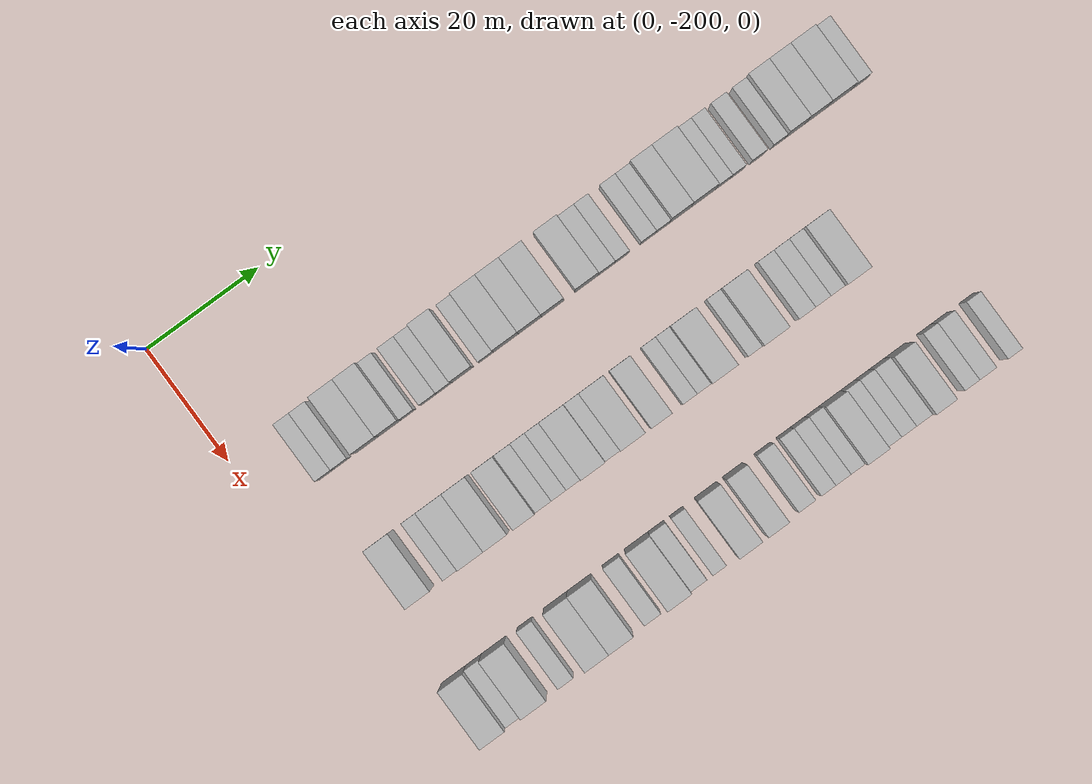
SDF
<sdf version="1.6">
 <world name="default">
  <model name="building_45">
   <static>1</static>
   <pose>25.0000 -189.5589 0 0.000000 0.000000 0.000000</pose>
   <link name="link">
    <pose>0 0 3.00 0 0 0</pose>
    <collision name="collision"><geometry><box><size>10.0000 2.7547 6.0000</size></box></geometry></collision>
    <visual name="visual">
     <cast_shadows>0</cast_shadows>
     <geometry><box><size>10.0000 2.7547 6.0000</size></box></geometry>
     <material>
      <script>
       <uri>model://HANNAS_wall/materials/scripts</uri>
       <uri>model://HANNAS_wall/materials/textures</uri>
       <name>vrc/HANNAS_wall</name>
      </script>
     </material>
    </visual>
   </link>
  </model>
  <model name="building_46">
   <static>1</static>
   <pose>25.0000 -186.7561 0 0.000000 0.000000 0.000000</pose>
   <link name="link">
    <pose>0 0 3.00 0 0 0</pose>
    <collision name="collision"><geometry><box><size>10.0000 2.8510 6.0000</size></box></geometry></collision>
    <visual name="visual">
     <cast_shadows>0</cast_shadows>
     <geometry><box><size>10.0000 2.8510 6.0000</size></box></geometry>
     <material>
      <script>
       <uri>model://HANNAS_wall/materials/scripts</uri>
       <uri>model://HANNAS_wall/materials/textures</uri>
       <name>vrc/HANNAS_wall</name>
      </script>
     </material>
    </visual>
   </link>
  </model>
  <model name="building_47">
   <static>1</static>
   <pose>25.0000 -182.2093 0 0.000000 0.000000 0.000000</pose>
   <link name="link">
    <pose>0 0 4.50 0 0 0</pose>
    <collision name="collision"><geometry><box><size>10.0000 4.2424 9.0000</size></box></geometry></collision>
    <visual name="visual">
     <cast_shadows>0</cast_shadows>
     <geometry><box><size>10.0000 4.2424 9.0000</size></box></geometry>
     <material>
      <script>
       <uri>model://HANNAS_wall/materials/scripts</uri>
       <uri>model://HANNAS_wall/materials/textures</uri>
       <name>vrc/HANNAS_wall</name>
      </script>
     </material>
    </visual>
   </link>
  </model>
  <model name="building_48">
   <static>1</static>
   <pose>25.0000 -178.1361 0 0.000000 0.000000 0.000000</pose>
   <link name="link">
    <pose>0 0 4.50 0 0 0</pose>
    <collision name="collision"><geometry><box><size>10.0000 3.9040 9.0000</size></box></geometry></collision>
    <visual name="visual">
     <cast_shadows>0</cast_shadows>
     <geometry><box><size>10.0000 3.9040 9.0000</size></box></geometry>
     <material>
      <script>
       <uri>model://HANNAS_wall/materials/scripts</uri>
       <uri>model://HANNAS_wall/materials/textures</uri>
       <name>vrc/HANNAS_wall</name>
      </script>
     </material>
    </visual>
   </link>
  </model>
  <model name="building_49">
   <static>1</static>
   <pose>25.0000 -174.9374 0 0.000000 0.000000 0.000000</pose>
   <link name="link">
    <pose>0 0 3.00 0 0 0</pose>
    <collision name="collision"><geometry><box><size>10.0000 2.4933 6.0000</size></box></geometry></collision>
    <visual name="visual">
     <cast_shadows>0</cast_shadows>
     <geometry><box><size>10.0000 2.4933 6.0000</size></box></geometry>
     <material>
      <script>
       <uri>model://HANNAS_wall/materials/scripts</uri>
       <uri>model://HANNAS_wall/materials/textures</uri>
       <name>vrc/HANNAS_wall</name>
      </script>
     </material>
    </visual>
   </link>
  </model>
  <model name="building_50">
   <static>1</static>
   <pose>25.0000 -171.2489 0 0.000000 0.000000 0.000000</pose>
   <link name="link">
    <pose>0 0 3.00 0 0 0</pose>
    <collision name="collision"><geometry><box><size>10.0000 2.8836 6.0000</size></box></geometry></collision>
    <visual name="visual">
     <cast_shadows>0</cast_shadows>
     <geometry><box><size>10.0000 2.8836 6.0000</size></box></geometry>
     <material>
      <script>
       <uri>model://HANNAS_wall/materials/scripts</uri>
       <uri>model://HANNAS_wall/materials/textures</uri>
       <name>vrc/HANNAS_wall</name>
      </script>
     </material>
    </visual>
   </link>
  </model>
  <model name="building_51">
   <static>1</static>
   <pose>25.0000 -168.4808 0 0.000000 0.000000 0.000000</pose>
   <link name="link">
    <pose>0 0 3.00 0 0 0</pose>
    <collision name="collision"><geometry><box><size>10.0000 2.6526 6.0000</size></box></geometry></collision>
    <visual name="visual">
     <cast_shadows>0</cast_shadows>
     <geometry><box><size>10.0000 2.6526 6.0000</size></box></geometry>
     <material>
      <script>
       <uri>model://HANNAS_wall/materials/scripts</uri>
       <uri>model://HANNAS_wall/materials/textures</uri>
       <name>vrc/HANNAS_wall</name>
      </script>
     </material>
    </visual>
   </link>
  </model>
  <model name="building_52">
   <static>1</static>
   <pose>25.0000 -165.2597 0 0.000000 0.000000 0.000000</pose>
   <link name="link">
    <pose>0 0 4.50 0 0 0</pose>
    <collision name="collision"><geometry><box><size>10.0000 3.7896 9.0000</size></box></geometry></collision>
    <visual name="visual">
     <cast_shadows>0</cast_shadows>
     <geometry><box><size>10.0000 3.7896 9.0000</size></box></geometry>
     <material>
      <script>
       <uri>model://HANNAS_wall/materials/scripts</uri>
       <uri>model://HANNAS_wall/materials/textures</uri>
       <name>vrc/HANNAS_wall</name>
      </script>
     </material>
    </visual>
   </link>
  </model>
  <model name="building_53">
   <static>1</static>
   <pose>25.0000 -161.0583 0 0.000000 0.000000 0.000000</pose>
   <link name="link">
    <pose>0 0 3.00 0 0 0</pose>
    <collision name="collision"><geometry><box><size>10.0000 2.6131 6.0000</size></box></geometry></collision>
    <visual name="visual">
     <cast_shadows>0</cast_shadows>
     <geometry><box><size>10.0000 2.6131 6.0000</size></box></geometry>
     <material>
      <script>
       <uri>model://HANNAS_wall/materials/scripts</uri>
       <uri>model://HANNAS_wall/materials/textures</uri>
       <name>vrc/HANNAS_wall</name>
      </script>
     </material>
    </visual>
   </link>
  </model>
  <model name="building_54">
   <static>1</static>
   <pose>25.0000 -157.5441 0 0.000000 0.000000 0.000000</pose>
   <link name="link">
    <pose>0 0 4.50 0 0 0</pose>
    <collision name="collision"><geometry><box><size>10.0000 4.4152 9.0000</size></box></geometry></collision>
    <visual name="visual">
     <cast_shadows>0</cast_shadows>
     <geometry><box><size>10.0000 4.4152 9.0000</size></box></geometry>
     <material>
      <script>
       <uri>model://HANNAS_wall/materials/scripts</uri>
       <uri>model://HANNAS_wall/materials/textures</uri>
       <name>vrc/HANNAS_wall</name>
      </script>
     </material>
    </visual>
   </link>
  </model>
  <model name="building_55">
   <static>1</static>
   <pose>25.0000 -153.2871 0 0.000000 0.000000 0.000000</pose>
   <link name="link">
    <pose>0 0 4.50 0 0 0</pose>
    <collision name="collision"><geometry><box><size>10.0000 4.0987 9.0000</size></box></geometry></collision>
    <visual name="visual">
     <cast_shadows>0</cast_shadows>
     <geometry><box><size>10.0000 4.0987 9.0000</size></box></geometry>
     <material>
      <script>
       <uri>model://HANNAS_wall/materials/scripts</uri>
       <uri>model://HANNAS_wall/materials/textures</uri>
       <name>vrc/HANNAS_wall</name>
      </script>
     </material>
    </visual>
   </link>
  </model>
  <model name="building_56">
   <static>1</static>
   <pose>25.0000 -149.2457 0 0.000000 0.000000 0.000000</pose>
   <link name="link">
    <pose>0 0 4.50 0 0 0</pose>
    <collision name="collision"><geometry><box><size>10.0000 3.9842 9.0000</size></box></geometry></collision>
    <visual name="visual">
     <cast_shadows>0</cast_shadows>
     <geometry><box><size>10.0000 3.9842 9.0000</size></box></geometry>
     <material>
      <script>
       <uri>model://HANNAS_wall/materials/scripts</uri>
       <uri>model://HANNAS_wall/materials/textures</uri>
       <name>vrc/HANNAS_wall</name>
      </script>
     </material>
    </visual>
   </link>
  </model>
  <model name="building_57">
   <static>1</static>
   <pose>25.0000 -143.2007 0 0.000000 0.000000 0.000000</pose>
   <link name="link">
    <pose>0 0 4.50 0 0 0</pose>
    <collision name="collision"><geometry><box><size>10.0000 4.1058 9.0000</size></box></geometry></collision>
    <visual name="visual">
     <cast_shadows>0</cast_shadows>
     <geometry><box><size>10.0000 4.1058 9.0000</size></box></geometry>
     <material>
      <script>
       <uri>model://HANNAS_wall/materials/scripts</uri>
       <uri>model://HANNAS_wall/materials/textures</uri>
       <name>vrc/HANNAS_wall</name>
      </script>
     </material>
    </visual>
   </link>
  </model>
  <model name="building_58">
   <static>1</static>
   <pose>25.0000 -139.6664 0 0.000000 0.000000 0.000000</pose>
   <link name="link">
    <pose>0 0 3.00 0 0 0</pose>
    <collision name="collision"><geometry><box><size>10.0000 2.9628 6.0000</size></box></geometry></collision>
    <visual name="visual">
     <cast_shadows>0</cast_shadows>
     <geometry><box><size>10.0000 2.9628 6.0000</size></box></geometry>
     <material>
      <script>
       <uri>model://HANNAS_wall/materials/scripts</uri>
       <uri>model://HANNAS_wall/materials/textures</uri>
       <name>vrc/HANNAS_wall</name>
      </script>
     </material>
    </visual>
   </link>
  </model>
  <model name="building_59">
   <static>1</static>
   <pose>25.0000 -136.9241 0 0.000000 0.000000 0.000000</pose>
   <link name="link">
    <pose>0 0 3.00 0 0 0</pose>
    <collision name="collision"><geometry><box><size>10.0000 2.5219 6.0000</size></box></geometry></collision>
    <visual name="visual">
     <cast_shadows>0</cast_shadows>
     <geometry><box><size>10.0000 2.5219 6.0000</size></box></geometry>
     <material>
      <script>
       <uri>model://HANNAS_wall/materials/scripts</uri>
       <uri>model://HANNAS_wall/materials/textures</uri>
       <name>vrc/HANNAS_wall</name>
      </script>
     </material>
    </visual>
   </link>
  </model>
  <model name="building_60">
   <static>1</static>
   <pose>25.0000 -132.2909 0 0.000000 0.000000 0.000000</pose>
   <link name="link">
    <pose>0 0 3.00 0 0 0</pose>
    <collision name="collision"><geometry><box><size>10.0000 2.7445 6.0000</size></box></geometry></collision>
    <visual name="visual">
     <cast_shadows>0</cast_shadows>
     <geometry><box><size>10.0000 2.7445 6.0000</size></box></geometry>
     <material>
      <script>
       <uri>model://HANNAS_wall/materials/scripts</uri>
       <uri>model://HANNAS_wall/materials/textures</uri>
       <name>vrc/HANNAS_wall</name>
      </script>
     </material>
    </visual>
   </link>
  </model>
  <model name="building_61">
   <static>1</static>
   <pose>25.0000 -129.6504 0 0.000000 0.000000 0.000000</pose>
   <link name="link">
    <pose>0 0 3.00 0 0 0</pose>
    <collision name="collision"><geometry><box><size>10.0000 2.5365 6.0000</size></box></geometry></collision>
    <visual name="visual">
     <cast_shadows>0</cast_shadows>
     <geometry><box><size>10.0000 2.5365 6.0000</size></box></geometry>
     <material>
      <script>
       <uri>model://HANNAS_wall/materials/scripts</uri>
       <uri>model://HANNAS_wall/materials/textures</uri>
       <name>vrc/HANNAS_wall</name>
      </script>
     </material>
    </visual>
   </link>
  </model>
  <model name="building_62">
   <static>1</static>
   <pose>25.0000 -126.5000 0 0.000000 0.000000 0.000000</pose>
   <link name="link">
    <pose>0 0 4.50 0 0 0</pose>
    <collision name="collision"><geometry><box><size>10.0000 3.7644 9.0000</size></box></geometry></collision>
    <visual name="visual">
     <cast_shadows>0</cast_shadows>
     <geometry><box><size>10.0000 3.7644 9.0000</size></box></geometry>
     <material>
      <script>
       <uri>model://HANNAS_wall/materials/scripts</uri>
       <uri>model://HANNAS_wall/materials/textures</uri>
       <name>vrc/HANNAS_wall</name>
      </script>
     </material>
    </visual>
   </link>
  </model>
  <model name="building_63">
   <static>1</static>
   <pose>25.0000 -122.3911 0 0.000000 0.000000 0.000000</pose>
   <link name="link">
    <pose>0 0 4.50 0 0 0</pose>
    <collision name="collision"><geometry><box><size>10.0000 4.4532 9.0000</size></box></geometry></collision>
    <visual name="visual">
     <cast_shadows>0</cast_shadows>
     <geometry><box><size>10.0000 4.4532 9.0000</size></box></geometry>
     <material>
      <script>
       <uri>model://HANNAS_wall/materials/scripts</uri>
       <uri>model://HANNAS_wall/materials/textures</uri>
       <name>vrc/HANNAS_wall</name>
      </script>
     </material>
    </visual>
   </link>
  </model>
  <model name="building_64">
   <static>1</static>
   <pose>25.0000 -118.8634 0 0.000000 0.000000 0.000000</pose>
   <link name="link">
    <pose>0 0 3.00 0 0 0</pose>
    <collision name="collision"><geometry><box><size>10.0000 2.6023 6.0000</size></box></geometry></collision>
    <visual name="visual">
     <cast_shadows>0</cast_shadows>
     <geometry><box><size>10.0000 2.6023 6.0000</size></box></geometry>
     <material>
      <script>
       <uri>model://HANNAS_wall/materials/scripts</uri>
       <uri>model://HANNAS_wall/materials/textures</uri>
       <name>vrc/HANNAS_wall</name>
      </script>
     </material>
    </visual>
   </link>
  </model>
  <model name="building_65">
   <static>1</static>
   <pose>25.0000 -116.3537 0 0.000000 0.000000 0.000000</pose>
   <link name="link">
    <pose>0 0 3.00 0 0 0</pose>
    <collision name="collision"><geometry><box><size>10.0000 2.4172 6.0000</size></box></geometry></collision>
    <visual name="visual">
     <cast_shadows>0</cast_shadows>
     <geometry><box><size>10.0000 2.4172 6.0000</size></box></geometry>
     <material>
      <script>
       <uri>model://HANNAS_wall/materials/scripts</uri>
       <uri>model://HANNAS_wall/materials/textures</uri>
       <name>vrc/HANNAS_wall</name>
      </script>
     </material>
    </visual>
   </link>
  </model>
  <model name="building_66">
   <static>1</static>
   <pose>25.0000 -112.7623 0 0.000000 0.000000 0.000000</pose>
   <link name="link">
    <pose>0 0 3.00 0 0 0</pose>
    <collision name="collision"><geometry><box><size>10.0000 2.7655 6.0000</size></box></geometry></collision>
    <visual name="visual">
     <cast_shadows>0</cast_shadows>
     <geometry><box><size>10.0000 2.7655 6.0000</size></box></geometry>
     <material>
      <script>
       <uri>model://HANNAS_wall/materials/scripts</uri>
       <uri>model://HANNAS_wall/materials/textures</uri>
       <name>vrc/HANNAS_wall</name>
      </script>
     </material>
    </visual>
   </link>
  </model>
  <model name="building_67">
   <static>1</static>
   <pose>25.0000 -109.1171 0 0.000000 0.000000 0.000000</pose>
   <link name="link">
    <pose>0 0 3.00 0 0 0</pose>
    <collision name="collision"><geometry><box><size>10.0000 2.5250 6.0000</size></box></geometry></collision>
    <visual name="visual">
     <cast_shadows>0</cast_shadows>
     <geometry><box><size>10.0000 2.5250 6.0000</size></box></geometry>
     <material>
      <script>
       <uri>model://HANNAS_wall/materials/scripts</uri>
       <uri>model://HANNAS_wall/materials/textures</uri>
       <name>vrc/HANNAS_wall</name>
      </script>
     </material>
    </visual>
   </link>
  </model>
  <model name="building_68">
   <static>1</static>
   <pose>25.0000 -106.0189 0 0.000000 0.000000 0.000000</pose>
   <link name="link">
    <pose>0 0 4.50 0 0 0</pose>
    <collision name="collision"><geometry><box><size>10.0000 3.6714 9.0000</size></box></geometry></collision>
    <visual name="visual">
     <cast_shadows>0</cast_shadows>
     <geometry><box><size>10.0000 3.6714 9.0000</size></box></geometry>
     <material>
      <script>
       <uri>model://HANNAS_wall/materials/scripts</uri>
       <uri>model://HANNAS_wall/materials/textures</uri>
       <name>vrc/HANNAS_wall</name>
      </script>
     </material>
    </visual>
   </link>
  </model>
  <model name="building_69">
   <static>1</static>
   <pose>25.0000 -102.3389 0 0.000000 0.000000 0.000000</pose>
   <link name="link">
    <pose>0 0 4.50 0 0 0</pose>
    <collision name="collision"><geometry><box><size>10.0000 3.6885 9.0000</size></box></geometry></collision>
    <visual name="visual">
     <cast_shadows>0</cast_shadows>
     <geometry><box><size>10.0000 3.6885 9.0000</size></box></geometry>
     <material>
      <script>
       <uri>model://HANNAS_wall/materials/scripts</uri>
       <uri>model://HANNAS_wall/materials/textures</uri>
       <name>vrc/HANNAS_wall</name>
      </script>
     </material>
    </visual>
   </link>
  </model>
  <model name="building_70">
   <static>1</static>
   <pose>25.0000 -98.3121 0 0.000000 0.000000 0.000000</pose>
   <link name="link">
    <pose>0 0 4.50 0 0 0</pose>
    <collision name="collision"><geometry><box><size>10.0000 4.3652 9.0000</size></box></geometry></collision>
    <visual name="visual">
     <cast_shadows>0</cast_shadows>
     <geometry><box><size>10.0000 4.3652 9.0000</size></box></geometry>
     <material>
      <script>
       <uri>model://HANNAS_wall/materials/scripts</uri>
       <uri>model://HANNAS_wall/materials/textures</uri>
       <name>vrc/HANNAS_wall</name>
      </script>
     </material>
    </visual>
   </link>
  </model>
  <model name="building_71">
   <static>1</static>
   <pose>25.0000 -94.6401 0 0.000000 0.000000 0.000000</pose>
   <link name="link">
    <pose>0 0 3.00 0 0 0</pose>
    <collision name="collision"><geometry><box><size>10.0000 2.9789 6.0000</size></box></geometry></collision>
    <visual name="visual">
     <cast_shadows>0</cast_shadows>
     <geometry><box><size>10.0000 2.9789 6.0000</size></box></geometry>
     <material>
      <script>
       <uri>model://HANNAS_wall/materials/scripts</uri>
       <uri>model://HANNAS_wall/materials/textures</uri>
       <name>vrc/HANNAS_wall</name>
      </script>
     </material>
    </visual>
   </link>
  </model>
  <model name="building_238">
   <static>1</static>
   <pose>47.0000 -188.7446 0 0.000000 0.000000 0.000000</pose>
   <link name="link">
    <pose>0 0 4.50 0 0 0</pose>
    <collision name="collision"><geometry><box><size>10.0000 4.2743 9.0000</size></box></geometry></collision>
    <visual name="visual">
     <cast_shadows>0</cast_shadows>
     <geometry><box><size>10.0000 4.2743 9.0000</size></box></geometry>
     <material>
      <script>
       <uri>model://HANNAS_wall/materials/scripts</uri>
       <uri>model://HANNAS_wall/materials/textures</uri>
       <name>vrc/HANNAS_wall</name>
      </script>
     </material>
    </visual>
   </link>
  </model>
  <model name="building_239">
   <static>1</static>
   <pose>47.0000 -183.2133 0 0.000000 0.000000 0.000000</pose>
   <link name="link">
    <pose>0 0 3.00 0 0 0</pose>
    <collision name="collision"><geometry><box><size>10.0000 2.7883 6.0000</size></box></geometry></collision>
    <visual name="visual">
     <cast_shadows>0</cast_shadows>
     <geometry><box><size>10.0000 2.7883 6.0000</size></box></geometry>
     <material>
      <script>
       <uri>model://HANNAS_wall/materials/scripts</uri>
       <uri>model://HANNAS_wall/materials/textures</uri>
       <name>vrc/HANNAS_wall</name>
      </script>
     </material>
    </visual>
   </link>
  </model>
  <model name="building_240">
   <static>1</static>
   <pose>47.0000 -179.5703 0 0.000000 0.000000 0.000000</pose>
   <link name="link">
    <pose>0 0 4.50 0 0 0</pose>
    <collision name="collision"><geometry><box><size>10.0000 4.4978 9.0000</size></box></geometry></collision>
    <visual name="visual">
     <cast_shadows>0</cast_shadows>
     <geometry><box><size>10.0000 4.4978 9.0000</size></box></geometry>
     <material>
      <script>
       <uri>model://HANNAS_wall/materials/scripts</uri>
       <uri>model://HANNAS_wall/materials/textures</uri>
       <name>vrc/HANNAS_wall</name>
      </script>
     </material>
    </visual>
   </link>
  </model>
  <model name="building_241">
   <static>1</static>
   <pose>47.0000 -175.2602 0 0.000000 0.000000 0.000000</pose>
   <link name="link">
    <pose>0 0 4.50 0 0 0</pose>
    <collision name="collision"><geometry><box><size>10.0000 4.1224 9.0000</size></box></geometry></collision>
    <visual name="visual">
     <cast_shadows>0</cast_shadows>
     <geometry><box><size>10.0000 4.1224 9.0000</size></box></geometry>
     <material>
      <script>
       <uri>model://HANNAS_wall/materials/scripts</uri>
       <uri>model://HANNAS_wall/materials/textures</uri>
       <name>vrc/HANNAS_wall</name>
      </script>
     </material>
    </visual>
   </link>
  </model>
  <model name="building_242">
   <static>1</static>
   <pose>47.0000 -170.3046 0 0.000000 0.000000 0.000000</pose>
   <link name="link">
    <pose>0 0 4.50 0 0 0</pose>
    <collision name="collision"><geometry><box><size>10.0000 3.7889 9.0000</size></box></geometry></collision>
    <visual name="visual">
     <cast_shadows>0</cast_shadows>
     <geometry><box><size>10.0000 3.7889 9.0000</size></box></geometry>
     <material>
      <script>
       <uri>model://HANNAS_wall/materials/scripts</uri>
       <uri>model://HANNAS_wall/materials/textures</uri>
       <name>vrc/HANNAS_wall</name>
      </script>
     </material>
    </visual>
   </link>
  </model>
  <model name="building_243">
   <static>1</static>
   <pose>47.0000 -166.9746 0 0.000000 0.000000 0.000000</pose>
   <link name="link">
    <pose>0 0 3.00 0 0 0</pose>
    <collision name="collision"><geometry><box><size>10.0000 2.8710 6.0000</size></box></geometry></collision>
    <visual name="visual">
     <cast_shadows>0</cast_shadows>
     <geometry><box><size>10.0000 2.8710 6.0000</size></box></geometry>
     <material>
      <script>
       <uri>model://HANNAS_wall/materials/scripts</uri>
       <uri>model://HANNAS_wall/materials/textures</uri>
       <name>vrc/HANNAS_wall</name>
      </script>
     </material>
    </visual>
   </link>
  </model>
  <model name="building_244">
   <static>1</static>
   <pose>47.0000 -164.2507 0 0.000000 0.000000 0.000000</pose>
   <link name="link">
    <pose>0 0 3.00 0 0 0</pose>
    <collision name="collision"><geometry><box><size>10.0000 2.5768 6.0000</size></box></geometry></collision>
    <visual name="visual">
     <cast_shadows>0</cast_shadows>
     <geometry><box><size>10.0000 2.5768 6.0000</size></box></geometry>
     <material>
      <script>
       <uri>model://HANNAS_wall/materials/scripts</uri>
       <uri>model://HANNAS_wall/materials/textures</uri>
       <name>vrc/HANNAS_wall</name>
      </script>
     </material>
    </visual>
   </link>
  </model>
  <model name="building_245">
   <static>1</static>
   <pose>47.0000 -161.6881 0 0.000000 0.000000 0.000000</pose>
   <link name="link">
    <pose>0 0 3.00 0 0 0</pose>
    <collision name="collision"><geometry><box><size>10.0000 2.5483 6.0000</size></box></geometry></collision>
    <visual name="visual">
     <cast_shadows>0</cast_shadows>
     <geometry><box><size>10.0000 2.5483 6.0000</size></box></geometry>
     <material>
      <script>
       <uri>model://HANNAS_wall/materials/scripts</uri>
       <uri>model://HANNAS_wall/materials/textures</uri>
       <name>vrc/HANNAS_wall</name>
      </script>
     </material>
    </visual>
   </link>
  </model>
  <model name="building_246">
   <static>1</static>
   <pose>47.0000 -158.2617 0 0.000000 0.000000 0.000000</pose>
   <link name="link">
    <pose>0 0 4.50 0 0 0</pose>
    <collision name="collision"><geometry><box><size>10.0000 4.3046 9.0000</size></box></geometry></collision>
    <visual name="visual">
     <cast_shadows>0</cast_shadows>
     <geometry><box><size>10.0000 4.3046 9.0000</size></box></geometry>
     <material>
      <script>
       <uri>model://HANNAS_wall/materials/scripts</uri>
       <uri>model://HANNAS_wall/materials/textures</uri>
       <name>vrc/HANNAS_wall</name>
      </script>
     </material>
    </visual>
   </link>
  </model>
  <model name="building_247">
   <static>1</static>
   <pose>47.0000 -154.8001 0 0.000000 0.000000 0.000000</pose>
   <link name="link">
    <pose>0 0 3.00 0 0 0</pose>
    <collision name="collision"><geometry><box><size>10.0000 2.6187 6.0000</size></box></geometry></collision>
    <visual name="visual">
     <cast_shadows>0</cast_shadows>
     <geometry><box><size>10.0000 2.6187 6.0000</size></box></geometry>
     <material>
      <script>
       <uri>model://HANNAS_wall/materials/scripts</uri>
       <uri>model://HANNAS_wall/materials/textures</uri>
       <name>vrc/HANNAS_wall</name>
      </script>
     </material>
    </visual>
   </link>
  </model>
  <model name="building_248">
   <static>1</static>
   <pose>47.0000 -151.3104 0 0.000000 0.000000 0.000000</pose>
   <link name="link">
    <pose>0 0 4.50 0 0 0</pose>
    <collision name="collision"><geometry><box><size>10.0000 4.3606 9.0000</size></box></geometry></collision>
    <visual name="visual">
     <cast_shadows>0</cast_shadows>
     <geometry><box><size>10.0000 4.3606 9.0000</size></box></geometry>
     <material>
      <script>
       <uri>model://HANNAS_wall/materials/scripts</uri>
       <uri>model://HANNAS_wall/materials/textures</uri>
       <name>vrc/HANNAS_wall</name>
      </script>
     </material>
    </visual>
   </link>
  </model>
  <model name="building_249">
   <static>1</static>
   <pose>47.0000 -146.3010 0 0.000000 0.000000 0.000000</pose>
   <link name="link">
    <pose>0 0 4.50 0 0 0</pose>
    <collision name="collision"><geometry><box><size>10.0000 3.6583 9.0000</size></box></geometry></collision>
    <visual name="visual">
     <cast_shadows>0</cast_shadows>
     <geometry><box><size>10.0000 3.6583 9.0000</size></box></geometry>
     <material>
      <script>
       <uri>model://HANNAS_wall/materials/scripts</uri>
       <uri>model://HANNAS_wall/materials/textures</uri>
       <name>vrc/HANNAS_wall</name>
      </script>
     </material>
    </visual>
   </link>
  </model>
  <model name="building_250">
   <static>1</static>
   <pose>47.0000 -141.2087 0 0.000000 0.000000 0.000000</pose>
   <link name="link">
    <pose>0 0 3.00 0 0 0</pose>
    <collision name="collision"><geometry><box><size>10.0000 2.5261 6.0000</size></box></geometry></collision>
    <visual name="visual">
     <cast_shadows>0</cast_shadows>
     <geometry><box><size>10.0000 2.5261 6.0000</size></box></geometry>
     <material>
      <script>
       <uri>model://HANNAS_wall/materials/scripts</uri>
       <uri>model://HANNAS_wall/materials/textures</uri>
       <name>vrc/HANNAS_wall</name>
      </script>
     </material>
    </visual>
   </link>
  </model>
  <model name="building_251">
   <static>1</static>
   <pose>47.0000 -138.7225 0 0.000000 0.000000 0.000000</pose>
   <link name="link">
    <pose>0 0 3.00 0 0 0</pose>
    <collision name="collision"><geometry><box><size>10.0000 2.4464 6.0000</size></box></geometry></collision>
    <visual name="visual">
     <cast_shadows>0</cast_shadows>
     <geometry><box><size>10.0000 2.4464 6.0000</size></box></geometry>
     <material>
      <script>
       <uri>model://HANNAS_wall/materials/scripts</uri>
       <uri>model://HANNAS_wall/materials/textures</uri>
       <name>vrc/HANNAS_wall</name>
      </script>
     </material>
    </visual>
   </link>
  </model>
  <model name="building_252">
   <static>1</static>
   <pose>47.0000 -135.2540 0 0.000000 0.000000 0.000000</pose>
   <link name="link">
    <pose>0 0 4.50 0 0 0</pose>
    <collision name="collision"><geometry><box><size>10.0000 4.4904 9.0000</size></box></geometry></collision>
    <visual name="visual">
     <cast_shadows>0</cast_shadows>
     <geometry><box><size>10.0000 4.4904 9.0000</size></box></geometry>
     <material>
      <script>
       <uri>model://HANNAS_wall/materials/scripts</uri>
       <uri>model://HANNAS_wall/materials/textures</uri>
       <name>vrc/HANNAS_wall</name>
      </script>
     </material>
    </visual>
   </link>
  </model>
  <model name="building_253">
   <static>1</static>
   <pose>47.0000 -129.7563 0 0.000000 0.000000 0.000000</pose>
   <link name="link">
    <pose>0 0 3.00 0 0 0</pose>
    <collision name="collision"><geometry><box><size>10.0000 2.5051 6.0000</size></box></geometry></collision>
    <visual name="visual">
     <cast_shadows>0</cast_shadows>
     <geometry><box><size>10.0000 2.5051 6.0000</size></box></geometry>
     <material>
      <script>
       <uri>model://HANNAS_wall/materials/scripts</uri>
       <uri>model://HANNAS_wall/materials/textures</uri>
       <name>vrc/HANNAS_wall</name>
      </script>
     </material>
    </visual>
   </link>
  </model>
  <model name="building_254">
   <static>1</static>
   <pose>47.0000 -126.2746 0 0.000000 0.000000 0.000000</pose>
   <link name="link">
    <pose>0 0 4.50 0 0 0</pose>
    <collision name="collision"><geometry><box><size>10.0000 4.4584 9.0000</size></box></geometry></collision>
    <visual name="visual">
     <cast_shadows>0</cast_shadows>
     <geometry><box><size>10.0000 4.4584 9.0000</size></box></geometry>
     <material>
      <script>
       <uri>model://HANNAS_wall/materials/scripts</uri>
       <uri>model://HANNAS_wall/materials/textures</uri>
       <name>vrc/HANNAS_wall</name>
      </script>
     </material>
    </visual>
   </link>
  </model>
  <model name="building_255">
   <static>1</static>
   <pose>47.0000 -120.6117 0 0.000000 0.000000 0.000000</pose>
   <link name="link">
    <pose>0 0 3.00 0 0 0</pose>
    <collision name="collision"><geometry><box><size>10.0000 2.8674 6.0000</size></box></geometry></collision>
    <visual name="visual">
     <cast_shadows>0</cast_shadows>
     <geometry><box><size>10.0000 2.8674 6.0000</size></box></geometry>
     <material>
      <script>
       <uri>model://HANNAS_wall/materials/scripts</uri>
       <uri>model://HANNAS_wall/materials/textures</uri>
       <name>vrc/HANNAS_wall</name>
      </script>
     </material>
    </visual>
   </link>
  </model>
  <model name="building_256">
   <static>1</static>
   <pose>47.0000 -117.8294 0 0.000000 0.000000 0.000000</pose>
   <link name="link">
    <pose>0 0 3.00 0 0 0</pose>
    <collision name="collision"><geometry><box><size>10.0000 2.6973 6.0000</size></box></geometry></collision>
    <visual name="visual">
     <cast_shadows>0</cast_shadows>
     <geometry><box><size>10.0000 2.6973 6.0000</size></box></geometry>
     <material>
      <script>
       <uri>model://HANNAS_wall/materials/scripts</uri>
       <uri>model://HANNAS_wall/materials/textures</uri>
       <name>vrc/HANNAS_wall</name>
      </script>
     </material>
    </visual>
   </link>
  </model>
  <model name="building_257">
   <static>1</static>
   <pose>47.0000 -115.2384 0 0.000000 0.000000 0.000000</pose>
   <link name="link">
    <pose>0 0 3.00 0 0 0</pose>
    <collision name="collision"><geometry><box><size>10.0000 2.4847 6.0000</size></box></geometry></collision>
    <visual name="visual">
     <cast_shadows>0</cast_shadows>
     <geometry><box><size>10.0000 2.4847 6.0000</size></box></geometry>
     <material>
      <script>
       <uri>model://HANNAS_wall/materials/scripts</uri>
       <uri>model://HANNAS_wall/materials/textures</uri>
       <name>vrc/HANNAS_wall</name>
      </script>
     </material>
    </visual>
   </link>
  </model>
  <model name="building_258">
   <static>1</static>
   <pose>47.0000 -111.9195 0 0.000000 0.000000 0.000000</pose>
   <link name="link">
    <pose>0 0 4.50 0 0 0</pose>
    <collision name="collision"><geometry><box><size>10.0000 4.1532 9.0000</size></box></geometry></collision>
    <visual name="visual">
     <cast_shadows>0</cast_shadows>
     <geometry><box><size>10.0000 4.1532 9.0000</size></box></geometry>
     <material>
      <script>
       <uri>model://HANNAS_wall/materials/scripts</uri>
       <uri>model://HANNAS_wall/materials/textures</uri>
       <name>vrc/HANNAS_wall</name>
      </script>
     </material>
    </visual>
   </link>
  </model>
  <model name="building_423">
   <static>1</static>
   <pose>69.0000 -191.9128 0 0.000000 0.000000 0.000000</pose>
   <link name="link">
    <pose>0 0 4.50 0 0 0</pose>
    <collision name="collision"><geometry><box><size>10.0000 4.3272 9.0000</size></box></geometry></collision>
    <visual name="visual">
     <cast_shadows>0</cast_shadows>
     <geometry><box><size>10.0000 4.3272 9.0000</size></box></geometry>
     <material>
      <script>
       <uri>model://HANNAS_wall/materials/scripts</uri>
       <uri>model://HANNAS_wall/materials/textures</uri>
       <name>vrc/HANNAS_wall</name>
      </script>
     </material>
    </visual>
   </link>
  </model>
  <model name="building_424">
   <static>1</static>
   <pose>69.0000 -188.3586 0 0.000000 0.000000 0.000000</pose>
   <link name="link">
    <pose>0 0 3.00 0 0 0</pose>
    <collision name="collision"><geometry><box><size>10.0000 2.7813 6.0000</size></box></geometry></collision>
    <visual name="visual">
     <cast_shadows>0</cast_shadows>
     <geometry><box><size>10.0000 2.7813 6.0000</size></box></geometry>
     <material>
      <script>
       <uri>model://HANNAS_wall/materials/scripts</uri>
       <uri>model://HANNAS_wall/materials/textures</uri>
       <name>vrc/HANNAS_wall</name>
      </script>
     </material>
    </visual>
   </link>
  </model>
  <model name="building_425">
   <static>1</static>
   <pose>69.0000 -184.7558 0 0.000000 0.000000 0.000000</pose>
   <link name="link">
    <pose>0 0 4.50 0 0 0</pose>
    <collision name="collision"><geometry><box><size>10.0000 4.4242 9.0000</size></box></geometry></collision>
    <visual name="visual">
     <cast_shadows>0</cast_shadows>
     <geometry><box><size>10.0000 4.4242 9.0000</size></box></geometry>
     <material>
      <script>
       <uri>model://HANNAS_wall/materials/scripts</uri>
       <uri>model://HANNAS_wall/materials/textures</uri>
       <name>vrc/HANNAS_wall</name>
      </script>
     </material>
    </visual>
   </link>
  </model>
  <model name="building_426">
   <static>1</static>
   <pose>69.0000 -179.1888 0 0.000000 0.000000 0.000000</pose>
   <link name="link">
    <pose>0 0 3.00 0 0 0</pose>
    <collision name="collision"><geometry><box><size>10.0000 2.7099 6.0000</size></box></geometry></collision>
    <visual name="visual">
     <cast_shadows>0</cast_shadows>
     <geometry><box><size>10.0000 2.7099 6.0000</size></box></geometry>
     <material>
      <script>
       <uri>model://HANNAS_wall/materials/scripts</uri>
       <uri>model://HANNAS_wall/materials/textures</uri>
       <name>vrc/HANNAS_wall</name>
      </script>
     </material>
    </visual>
   </link>
  </model>
  <model name="building_427">
   <static>1</static>
   <pose>69.0000 -173.7508 0 0.000000 0.000000 0.000000</pose>
   <link name="link">
    <pose>0 0 4.50 0 0 0</pose>
    <collision name="collision"><geometry><box><size>10.0000 4.1661 9.0000</size></box></geometry></collision>
    <visual name="visual">
     <cast_shadows>0</cast_shadows>
     <geometry><box><size>10.0000 4.1661 9.0000</size></box></geometry>
     <material>
      <script>
       <uri>model://HANNAS_wall/materials/scripts</uri>
       <uri>model://HANNAS_wall/materials/textures</uri>
       <name>vrc/HANNAS_wall</name>
      </script>
     </material>
    </visual>
   </link>
  </model>
  <model name="building_428">
   <static>1</static>
   <pose>69.0000 -169.5221 0 0.000000 0.000000 0.000000</pose>
   <link name="link">
    <pose>0 0 4.50 0 0 0</pose>
    <collision name="collision"><geometry><box><size>10.0000 4.2913 9.0000</size></box></geometry></collision>
    <visual name="visual">
     <cast_shadows>0</cast_shadows>
     <geometry><box><size>10.0000 4.2913 9.0000</size></box></geometry>
     <material>
      <script>
       <uri>model://HANNAS_wall/materials/scripts</uri>
       <uri>model://HANNAS_wall/materials/textures</uri>
       <name>vrc/HANNAS_wall</name>
      </script>
     </material>
    </visual>
   </link>
  </model>
  <model name="building_429">
   <static>1</static>
   <pose>69.0000 -163.9144 0 0.000000 0.000000 0.000000</pose>
   <link name="link">
    <pose>0 0 3.00 0 0 0</pose>
    <collision name="collision"><geometry><box><size>10.0000 2.9240 6.0000</size></box></geometry></collision>
    <visual name="visual">
     <cast_shadows>0</cast_shadows>
     <geometry><box><size>10.0000 2.9240 6.0000</size></box></geometry>
     <material>
      <script>
       <uri>model://HANNAS_wall/materials/scripts</uri>
       <uri>model://HANNAS_wall/materials/textures</uri>
       <name>vrc/HANNAS_wall</name>
      </script>
     </material>
    </visual>
   </link>
  </model>
  <model name="building_430">
   <static>1</static>
   <pose>69.0000 -159.3323 0 0.000000 0.000000 0.000000</pose>
   <link name="link">
    <pose>0 0 4.50 0 0 0</pose>
    <collision name="collision"><geometry><box><size>10.0000 4.2403 9.0000</size></box></geometry></collision>
    <visual name="visual">
     <cast_shadows>0</cast_shadows>
     <geometry><box><size>10.0000 4.2403 9.0000</size></box></geometry>
     <material>
      <script>
       <uri>model://HANNAS_wall/materials/scripts</uri>
       <uri>model://HANNAS_wall/materials/textures</uri>
       <name>vrc/HANNAS_wall</name>
      </script>
     </material>
    </visual>
   </link>
  </model>
  <model name="building_431">
   <static>1</static>
   <pose>69.0000 -155.7856 0 0.000000 0.000000 0.000000</pose>
   <link name="link">
    <pose>0 0 3.00 0 0 0</pose>
    <collision name="collision"><geometry><box><size>10.0000 2.8531 6.0000</size></box></geometry></collision>
    <visual name="visual">
     <cast_shadows>0</cast_shadows>
     <geometry><box><size>10.0000 2.8531 6.0000</size></box></geometry>
     <material>
      <script>
       <uri>model://HANNAS_wall/materials/scripts</uri>
       <uri>model://HANNAS_wall/materials/textures</uri>
       <name>vrc/HANNAS_wall</name>
      </script>
     </material>
    </visual>
   </link>
  </model>
  <model name="building_432">
   <static>1</static>
   <pose>69.0000 -152.1526 0 0.000000 0.000000 0.000000</pose>
   <link name="link">
    <pose>0 0 3.00 0 0 0</pose>
    <collision name="collision"><geometry><box><size>10.0000 2.4130 6.0000</size></box></geometry></collision>
    <visual name="visual">
     <cast_shadows>0</cast_shadows>
     <geometry><box><size>10.0000 2.4130 6.0000</size></box></geometry>
     <material>
      <script>
       <uri>model://HANNAS_wall/materials/scripts</uri>
       <uri>model://HANNAS_wall/materials/textures</uri>
       <name>vrc/HANNAS_wall</name>
      </script>
     </material>
    </visual>
   </link>
  </model>
  <model name="building_433">
   <static>1</static>
   <pose>69.0000 -146.9288 0 0.000000 0.000000 0.000000</pose>
   <link name="link">
    <pose>0 0 4.50 0 0 0</pose>
    <collision name="collision"><geometry><box><size>10.0000 4.0346 9.0000</size></box></geometry></collision>
    <visual name="visual">
     <cast_shadows>0</cast_shadows>
     <geometry><box><size>10.0000 4.0346 9.0000</size></box></geometry>
     <material>
      <script>
       <uri>model://HANNAS_wall/materials/scripts</uri>
       <uri>model://HANNAS_wall/materials/textures</uri>
       <name>vrc/HANNAS_wall</name>
      </script>
     </material>
    </visual>
   </link>
  </model>
  <model name="building_434">
   <static>1</static>
   <pose>69.0000 -142.0897 0 0.000000 0.000000 0.000000</pose>
   <link name="link">
    <pose>0 0 4.50 0 0 0</pose>
    <collision name="collision"><geometry><box><size>10.0000 3.6436 9.0000</size></box></geometry></collision>
    <visual name="visual">
     <cast_shadows>0</cast_shadows>
     <geometry><box><size>10.0000 3.6436 9.0000</size></box></geometry>
     <material>
      <script>
       <uri>model://HANNAS_wall/materials/scripts</uri>
       <uri>model://HANNAS_wall/materials/textures</uri>
       <name>vrc/HANNAS_wall</name>
      </script>
     </material>
    </visual>
   </link>
  </model>
  <model name="building_435">
   <static>1</static>
   <pose>69.0000 -136.7868 0 0.000000 0.000000 0.000000</pose>
   <link name="link">
    <pose>0 0 3.00 0 0 0</pose>
    <collision name="collision"><geometry><box><size>10.0000 2.9622 6.0000</size></box></geometry></collision>
    <visual name="visual">
     <cast_shadows>0</cast_shadows>
     <geometry><box><size>10.0000 2.9622 6.0000</size></box></geometry>
     <material>
      <script>
       <uri>model://HANNAS_wall/materials/scripts</uri>
       <uri>model://HANNAS_wall/materials/textures</uri>
       <name>vrc/HANNAS_wall</name>
      </script>
     </material>
    </visual>
   </link>
  </model>
  <model name="building_436">
   <static>1</static>
   <pose>69.0000 -133.0434 0 0.000000 0.000000 0.000000</pose>
   <link name="link">
    <pose>0 0 3.00 0 0 0</pose>
    <collision name="collision"><geometry><box><size>10.0000 2.5246 6.0000</size></box></geometry></collision>
    <visual name="visual">
     <cast_shadows>0</cast_shadows>
     <geometry><box><size>10.0000 2.5246 6.0000</size></box></geometry>
     <material>
      <script>
       <uri>model://HANNAS_wall/materials/scripts</uri>
       <uri>model://HANNAS_wall/materials/textures</uri>
       <name>vrc/HANNAS_wall</name>
      </script>
     </material>
    </visual>
   </link>
  </model>
  <model name="building_437">
   <static>1</static>
   <pose>69.0000 -130.4493 0 0.000000 0.000000 0.000000</pose>
   <link name="link">
    <pose>0 0 3.00 0 0 0</pose>
    <collision name="collision"><geometry><box><size>10.0000 2.6636 6.0000</size></box></geometry></collision>
    <visual name="visual">
     <cast_shadows>0</cast_shadows>
     <geometry><box><size>10.0000 2.6636 6.0000</size></box></geometry>
     <material>
      <script>
       <uri>model://HANNAS_wall/materials/scripts</uri>
       <uri>model://HANNAS_wall/materials/textures</uri>
       <name>vrc/HANNAS_wall</name>
      </script>
     </material>
    </visual>
   </link>
  </model>
  <model name="building_438">
   <static>1</static>
   <pose>69.0000 -127.8905 0 0.000000 0.000000 0.000000</pose>
   <link name="link">
    <pose>0 0 3.00 0 0 0</pose>
    <collision name="collision"><geometry><box><size>10.0000 2.4540 6.0000</size></box></geometry></collision>
    <visual name="visual">
     <cast_shadows>0</cast_shadows>
     <geometry><box><size>10.0000 2.4540 6.0000</size></box></geometry>
     <material>
      <script>
       <uri>model://HANNAS_wall/materials/scripts</uri>
       <uri>model://HANNAS_wall/materials/textures</uri>
       <name>vrc/HANNAS_wall</name>
      </script>
     </material>
    </visual>
   </link>
  </model>
  <model name="building_439">
   <static>1</static>
   <pose>69.0000 -124.7581 0 0.000000 0.000000 0.000000</pose>
   <link name="link">
    <pose>0 0 4.50 0 0 0</pose>
    <collision name="collision"><geometry><box><size>10.0000 3.8107 9.0000</size></box></geometry></collision>
    <visual name="visual">
     <cast_shadows>0</cast_shadows>
     <geometry><box><size>10.0000 3.8107 9.0000</size></box></geometry>
     <material>
      <script>
       <uri>model://HANNAS_wall/materials/scripts</uri>
       <uri>model://HANNAS_wall/materials/textures</uri>
       <name>vrc/HANNAS_wall</name>
      </script>
     </material>
    </visual>
   </link>
  </model>
  <model name="building_440">
   <static>1</static>
   <pose>69.0000 -121.5416 0 0.000000 0.000000 0.000000</pose>
   <link name="link">
    <pose>0 0 3.00 0 0 0</pose>
    <collision name="collision"><geometry><box><size>10.0000 2.6223 6.0000</size></box></geometry></collision>
    <visual name="visual">
     <cast_shadows>0</cast_shadows>
     <geometry><box><size>10.0000 2.6223 6.0000</size></box></geometry>
     <material>
      <script>
       <uri>model://HANNAS_wall/materials/scripts</uri>
       <uri>model://HANNAS_wall/materials/textures</uri>
       <name>vrc/HANNAS_wall</name>
      </script>
     </material>
    </visual>
   </link>
  </model>
  <model name="building_441">
   <static>1</static>
   <pose>69.0000 -118.9310 0 0.000000 0.000000 0.000000</pose>
   <link name="link">
    <pose>0 0 3.00 0 0 0</pose>
    <collision name="collision"><geometry><box><size>10.0000 2.5988 6.0000</size></box></geometry></collision>
    <visual name="visual">
     <cast_shadows>0</cast_shadows>
     <geometry><box><size>10.0000 2.5988 6.0000</size></box></geometry>
     <material>
      <script>
       <uri>model://HANNAS_wall/materials/scripts</uri>
       <uri>model://HANNAS_wall/materials/textures</uri>
       <name>vrc/HANNAS_wall</name>
      </script>
     </material>
    </visual>
   </link>
  </model>
  <model name="building_442">
   <static>1</static>
   <pose>69.0000 -116.2239 0 0.000000 0.000000 0.000000</pose>
   <link name="link">
    <pose>0 0 3.00 0 0 0</pose>
    <collision name="collision"><geometry><box><size>10.0000 2.8154 6.0000</size></box></geometry></collision>
    <visual name="visual">
     <cast_shadows>0</cast_shadows>
     <geometry><box><size>10.0000 2.8154 6.0000</size></box></geometry>
     <material>
      <script>
       <uri>model://HANNAS_wall/materials/scripts</uri>
       <uri>model://HANNAS_wall/materials/textures</uri>
       <name>vrc/HANNAS_wall</name>
      </script>
     </material>
    </visual>
   </link>
  </model>
  <model name="building_443">
   <static>1</static>
   <pose>69.0000 -112.9844 0 0.000000 0.000000 0.000000</pose>
   <link name="link">
    <pose>0 0 4.50 0 0 0</pose>
    <collision name="collision"><geometry><box><size>10.0000 3.6636 9.0000</size></box></geometry></collision>
    <visual name="visual">
     <cast_shadows>0</cast_shadows>
     <geometry><box><size>10.0000 3.6636 9.0000</size></box></geometry>
     <material>
      <script>
       <uri>model://HANNAS_wall/materials/scripts</uri>
       <uri>model://HANNAS_wall/materials/textures</uri>
       <name>vrc/HANNAS_wall</name>
      </script>
     </material>
    </visual>
   </link>
  </model>
  <model name="building_444">
   <static>1</static>
   <pose>69.0000 -107.8527 0 0.000000 0.000000 0.000000</pose>
   <link name="link">
    <pose>0 0 3.00 0 0 0</pose>
    <collision name="collision"><geometry><box><size>10.0000 2.6000 6.0000</size></box></geometry></collision>
    <visual name="visual">
     <cast_shadows>0</cast_shadows>
     <geometry><box><size>10.0000 2.6000 6.0000</size></box></geometry>
     <material>
      <script>
       <uri>model://HANNAS_wall/materials/scripts</uri>
       <uri>model://HANNAS_wall/materials/textures</uri>
       <name>vrc/HANNAS_wall</name>
      </script>
     </material>
    </visual>
   </link>
  </model>
  <model name="building_445">
   <static>1</static>
   <pose>69.0000 -105.0635 0 0.000000 0.000000 0.000000</pose>
   <link name="link">
    <pose>0 0 3.00 0 0 0</pose>
    <collision name="collision"><geometry><box><size>10.0000 2.9783 6.0000</size></box></geometry></collision>
    <visual name="visual">
     <cast_shadows>0</cast_shadows>
     <geometry><box><size>10.0000 2.9783 6.0000</size></box></geometry>
     <material>
      <script>
       <uri>model://HANNAS_wall/materials/scripts</uri>
       <uri>model://HANNAS_wall/materials/textures</uri>
       <name>vrc/HANNAS_wall</name>
      </script>
     </material>
    </visual>
   </link>
  </model>
  <model name="building_446">
   <static>1</static>
   <pose>69.0000 -100.2997 0 0.000000 0.000000 0.000000</pose>
   <link name="link">
    <pose>0 0 3.00 0 0 0</pose>
    <collision name="collision"><geometry><box><size>10.0000 2.5494 6.0000</size></box></geometry></collision>
    <visual name="visual">
     <cast_shadows>0</cast_shadows>
     <geometry><box><size>10.0000 2.5494 6.0000</size></box></geometry>
     <material>
      <script>
       <uri>model://HANNAS_wall/materials/scripts</uri>
       <uri>model://HANNAS_wall/materials/textures</uri>
       <name>vrc/HANNAS_wall</name>
      </script>
     </material>
    </visual>
   </link>
  </model>
 </world>
</sdf>
